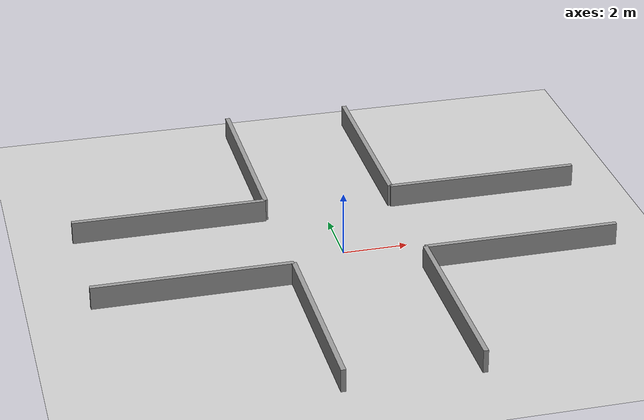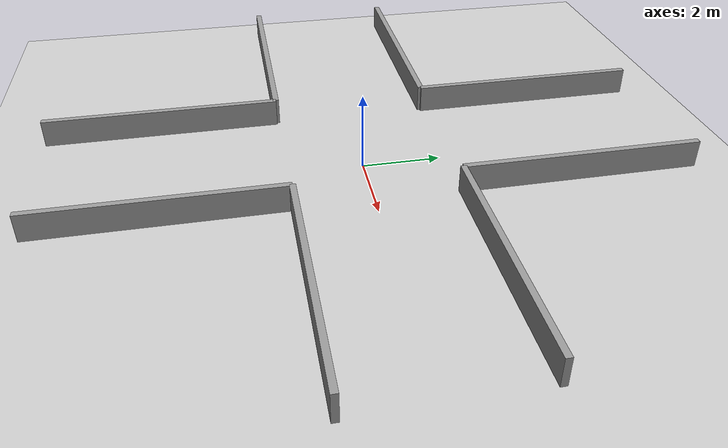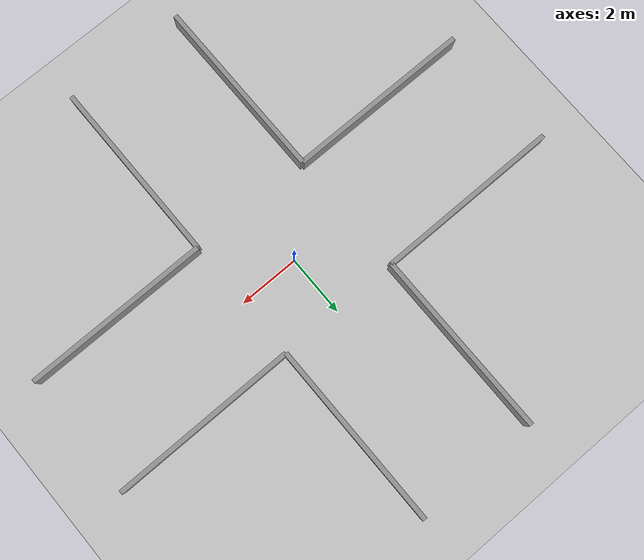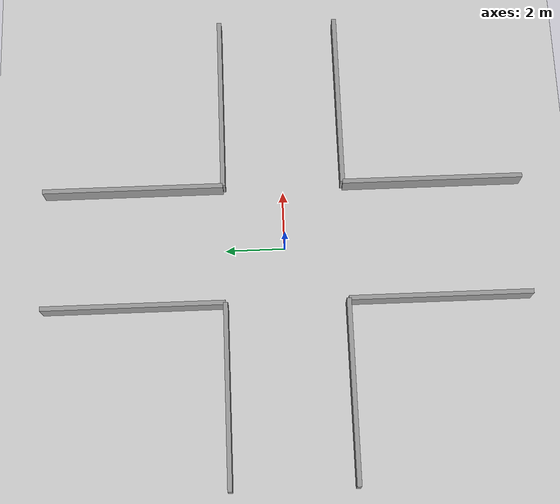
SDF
<sdf version="1.4">
 <world name="default">
  <physics type="ode">
   <gravity>0 0 -9.81</gravity>
   <ode>
    <solver><type>quick</type><iters>50</iters><sor>1.4</sor></solver>
    <constraints>
     <cfm>0.0</cfm>
     <erp>0.2</erp>
     <contact_max_correcting_vel>100.0</contact_max_correcting_vel>
     <contact_surface_layer>0.0</contact_surface_layer>
    </constraints>
   </ode>
   <real_time_update_rate>1000</real_time_update_rate>
   <max_step_size>0.001</max_step_size>
  </physics>
  <include><uri>model://sun</uri></include>
  <include><uri>model://ground_plane</uri></include>
  <model name="Corridor_Horizontal">
   <static>true</static>
   <link name="h_wall_bottom_left">
    <pose>-5 -2 0.7 0 0 0</pose>
    <collision name="collision"><geometry><box><size>6 0.15 0.7</size></box></geometry></collision>
    <visual name="visual">
     <geometry><box><size>6 0.15 0.7</size></box></geometry>
     <material><script><name>Gazebo/Grey</name></script></material>
    </visual>
   </link>
   <link name="h_wall_bottom_right">
    <pose>5 -2 0.7 0 0 0</pose>
    <collision name="collision"><geometry><box><size>6 0.15 0.7</size></box></geometry></collision>
    <visual name="visual">
     <geometry><box><size>6 0.15 0.7</size></box></geometry>
     <material><script><name>Gazebo/Grey</name></script></material>
    </visual>
   </link>
   <link name="h_wall_top_left">
    <pose>-5 2 0.7 0 0 0</pose>
    <collision name="collision"><geometry><box><size>6 0.15 0.7</size></box></geometry></collision>
    <visual name="visual">
     <geometry><box><size>6 0.15 0.7</size></box></geometry>
     <material><script><name>Gazebo/Grey</name></script></material>
    </visual>
   </link>
   <link name="h_wall_top_right">
    <pose>5 2 0.7 0 0 0</pose>
    <collision name="collision"><geometry><box><size>6 0.15 0.7</size></box></geometry></collision>
    <visual name="visual">
     <geometry><box><size>6 0.15 0.7</size></box></geometry>
     <material><script><name>Gazebo/Grey</name></script></material>
    </visual>
   </link>
  </model>
  <model name="Corridor_Vertical">
   <static>true</static>
   <link name="v_wall_left_top">
    <pose>-2 5 0.7 0 0 0</pose>
    <collision name="collision"><geometry><box><size>0.15 6 0.7</size></box></geometry></collision>
    <visual name="visual">
     <geometry><box><size>0.15 6 0.7</size></box></geometry>
     <material><script><name>Gazebo/Grey</name></script></material>
    </visual>
   </link>
   <link name="v_wall_left_bottom">
    <pose>-2 -5 0.7 0 0 0</pose>
    <collision name="collision"><geometry><box><size>0.15 6 0.7</size></box></geometry></collision>
    <visual name="visual">
     <geometry><box><size>0.15 6 0.7</size></box></geometry>
     <material><script><name>Gazebo/Grey</name></script></material>
    </visual>
   </link>
   <link name="v_wall_right_top">
    <pose>2 5 0.7 0 0 0</pose>
    <collision name="collision"><geometry><box><size>0.15 6 0.7</size></box></geometry></collision>
    <visual name="visual">
     <geometry><box><size>0.15 6 0.7</size></box></geometry>
     <material><script><name>Gazebo/Grey</name></script></material>
    </visual>
   </link>
   <link name="v_wall_right_bottom">
    <pose>2 -5 0.7 0 0 0</pose>
    <collision name="collision"><geometry><box><size>0.15 6 0.7</size></box></geometry></collision>
    <visual name="visual">
     <geometry><box><size>0.15 6 0.7</size></box></geometry>
     <material><script><name>Gazebo/Grey</name></script></material>
    </visual>
   </link>
  </model>
 </world>
</sdf>
